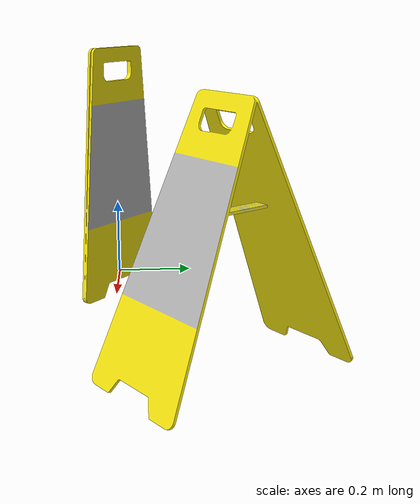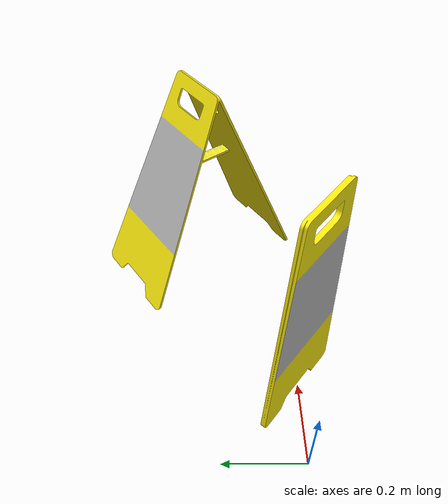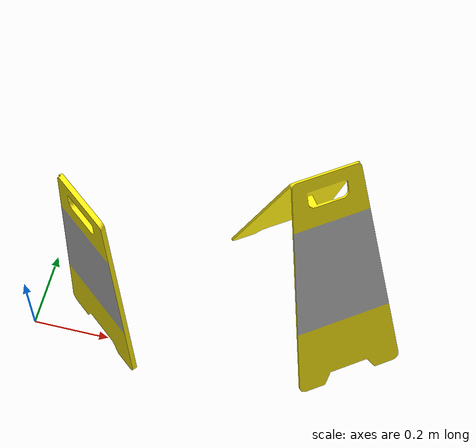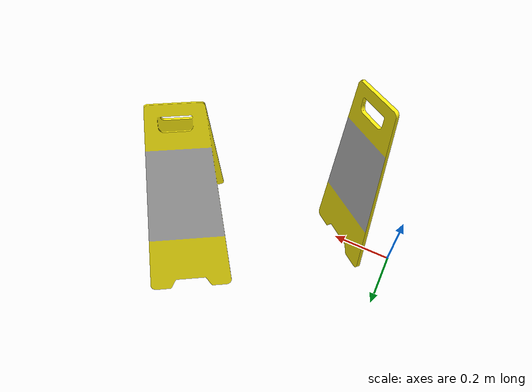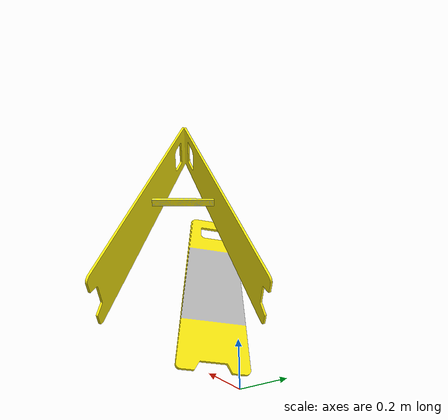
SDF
<?xml version='1.0'?>
<sdf version='1.6'>
  <model name='danger_sign'>
    <pose>0 0 0 0 0 0</pose>
    <static>true</static>
    <link name="danger_sign_link">
        <inertial>
            <mass>1.0</mass>
            <inertia>
            <ixx>0.083</ixx>
            <ixy>0.0</ixy>
            <ixz>0.0</ixz>
            <iyy>0.083</iyy>
            <iyz>0.0</iyz>
            <izz>0.083</izz>
            </inertia>
        </inertial>
        <visual name="danger_sign_visual">
            <geometry>
            <mesh>
                <uri>model://danger_sign/meshes/model.dae</uri>
            </mesh>
            </geometry>
            <material>
            <script>
                <uri>model://danger_sign/materials/scripts</uri>
                <uri>model://danger_sign/materials/textures</uri>
                <name>danger_sign</name>
            </script>
            </material>
        </visual>
        <collision name="danger_sign_collision">
            <geometry>
            <mesh>
                <uri>model://danger_sign/meshes/model.dae</uri>
            </mesh>
            </geometry>
        </collision>
    </link>
  </model>
</sdf>
